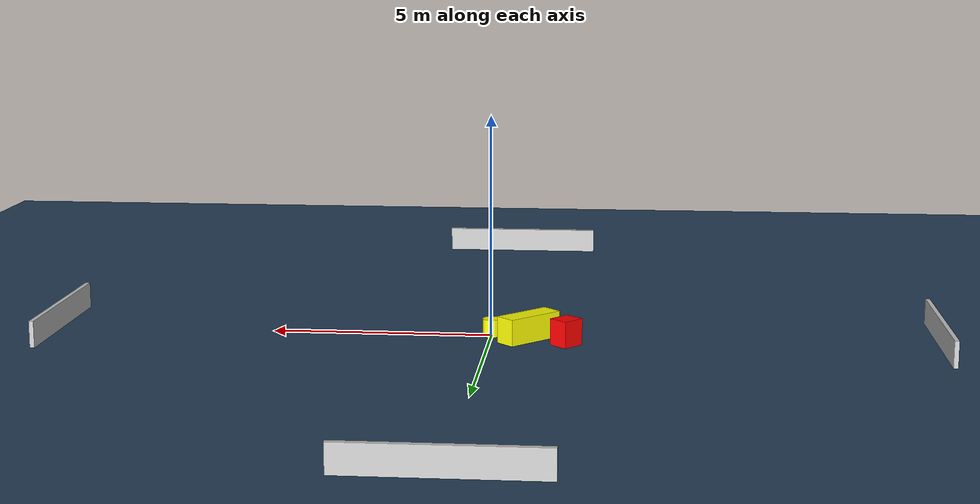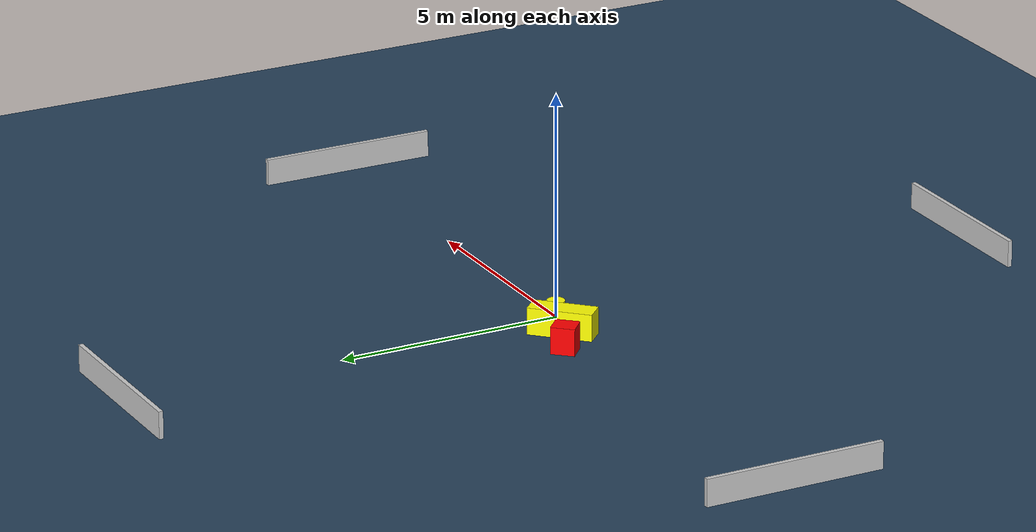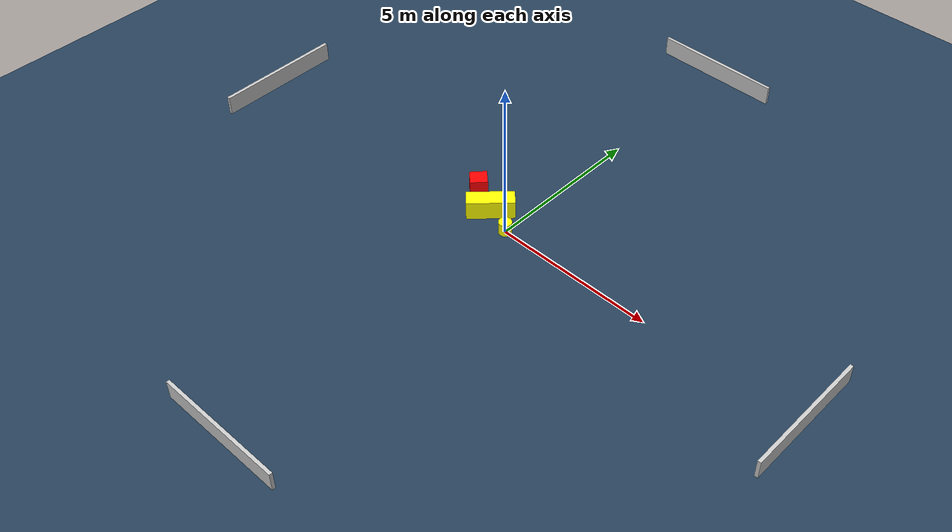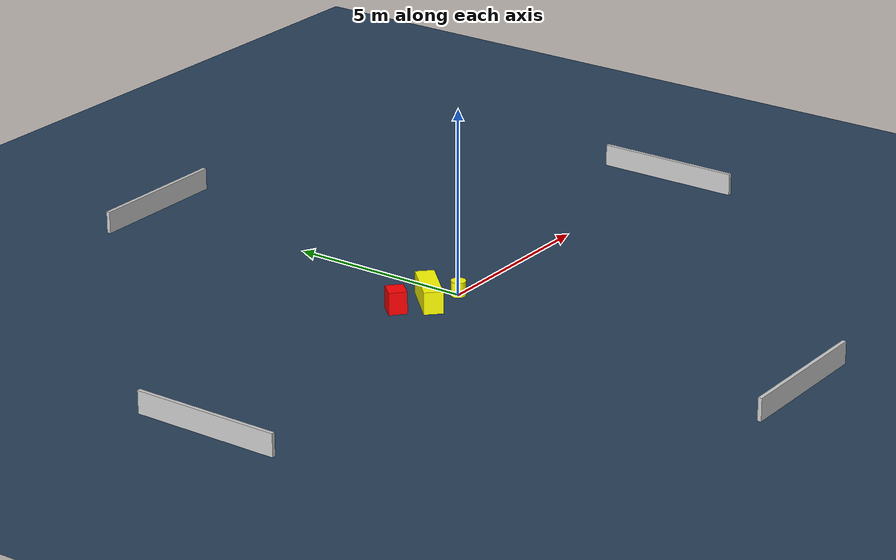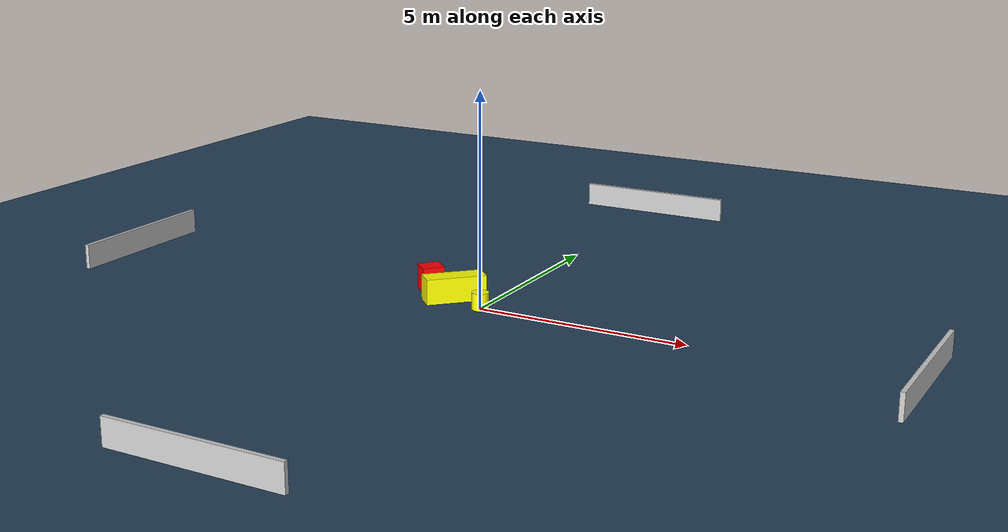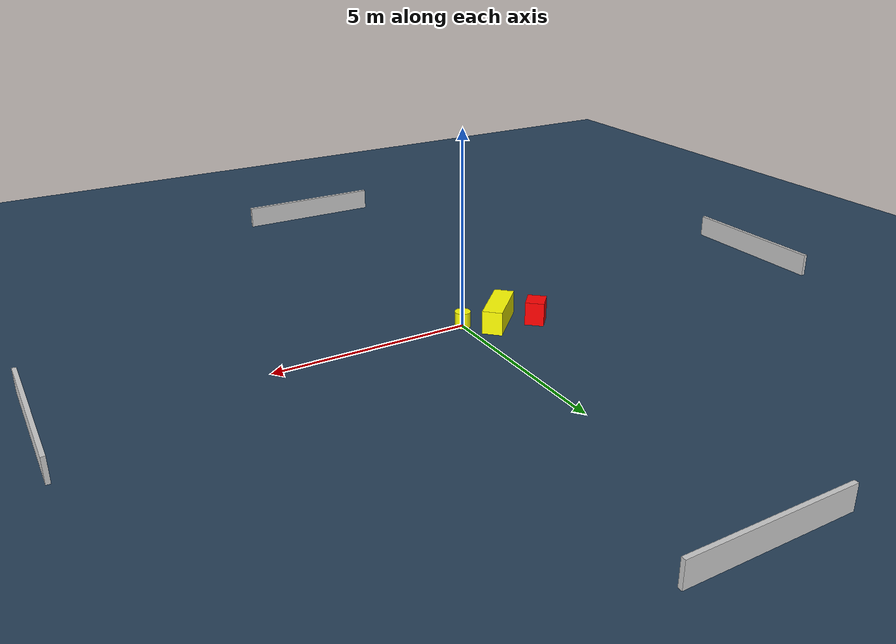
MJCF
<?xml version="1.0" ?>
<mujoco model="generated_environment">
  <option timestep="0.01" integrator="RK4" cone="elliptic"/>
  <default>
    <geom density="1"/>
  </default>
  <asset>
    <texture builtin="gradient" height="3072" name="skybox" rgb1="0.3 0.5 0.7" rgb2="0 0 0" type="skybox" width="512"/>
    <texture builtin="checker" height="300" name="groundplane" rgb1="0.2 0.3 0.4" rgb2="0.1 0.2 0.3" type="2d" width="300"/>
    <material name="groundplane" reflectance="0.2" texrepeat="5 5" texture="groundplane"/>
  </asset>
  <worldbody>
    <light dir="0 0 -1" directional="true" pos="0 0 1.5"/>
    <geom condim="3" friction="0.5 0.005 0.001" material="groundplane" name="floor" pos="0 0 0" size="0 0 0.05" type="plane"/>
    <body name="walls">
      <geom name="wall_1" condim="4" pos="-10.0 0.0 0.3" rgba="0.800000011920929 0.800000011920929 0.800000011920929 1.0" size="0.05 2.0 0.3" type="box"/>
      <geom name="wall_2" condim="4" pos="10.0 0.0 0.3" rgba="0.800000011920929 0.800000011920929 0.800000011920929 1.0" size="0.05 2.0 0.3" type="box"/>
      <geom name="wall_3" condim="4" pos="0.0 -10.0 0.3" rgba="0.800000011920929 0.800000011920929 0.800000011920929 1.0" size="2.0 0.05 0.3" type="box"/>
      <geom name="wall_4" condim="4" pos="0.0 10.0 0.3" rgba="0.800000011920929 0.800000011920929 0.800000011920929 1.0" size="2.0 0.05 0.3" type="box"/>
    </body>
    <body name="robot">
      <joint name="joint_x" type="slide" pos="0 0 0" axis="1 0 0"/>
      <joint name="joint_y" type="slide" pos="0 0 0" axis="0 1 0"/>
      <geom name="robot" type="cylinder" pos="0.0 0.0 0.2" size="0.2 0.2 0.0" mass="5.0" friction="1.0 0.005 0.0001" condim="4" rgba="1.0 1.0 0.0 1.0"/>
    </body>
    <body name="obstacle_1_movable">
      <geom name="obstacle_1_movable" condim="4" pos="-0.8597943085221976 0.29558208563068844 0.3" euler="0 0 135.19122915580402" friction="0.0 0.005 0.001" rgba="1.0 1.0 0.0 1.0" size="0.2506795503519265 0.7093330567639129 0.3" type="box" mass="0.1"/>
      <joint type="free"/>
    </body>
    <body name="obstacle_2_static">
      <geom name="obstacle_2_static" condim="4" pos="-1.7212009432426303 0.693054780944475 0.3" euler="0 0 137.83661099373904" friction="0.0 0.005 0.001" rgba="1.0 0.0 0.0 1.0" size="0.23787348981647743 0.26232860225557075 0.3" type="box"/>
    </body>
  </worldbody>
  <actuator>
    <motor name="actuator_x" joint="joint_x" gear="1" ctrlrange="-1 1"/>
    <motor name="actuator_y" joint="joint_y" gear="1" ctrlrange="-1 1"/>
  </actuator>
</mujoco>
